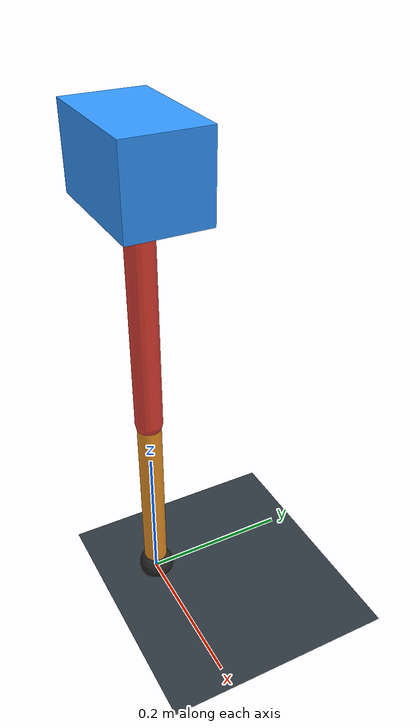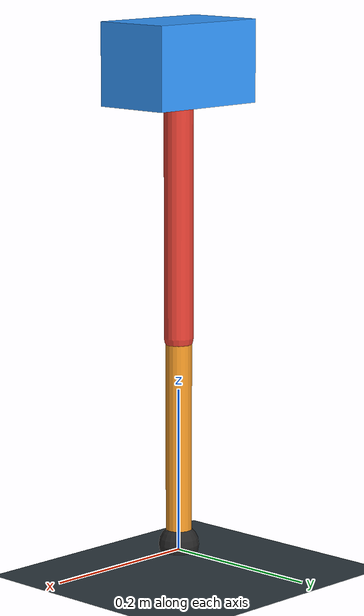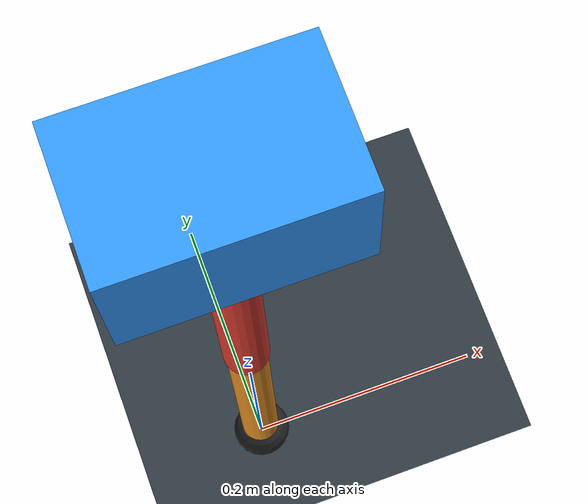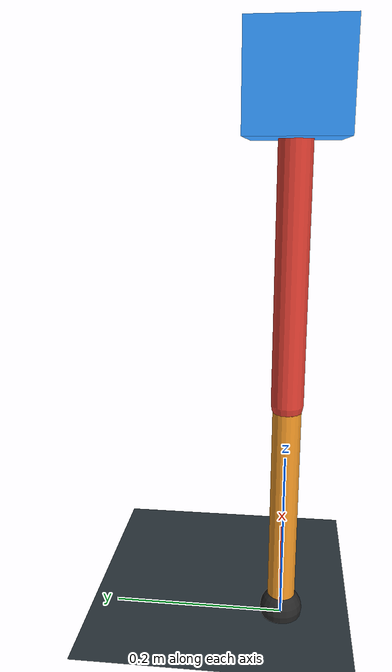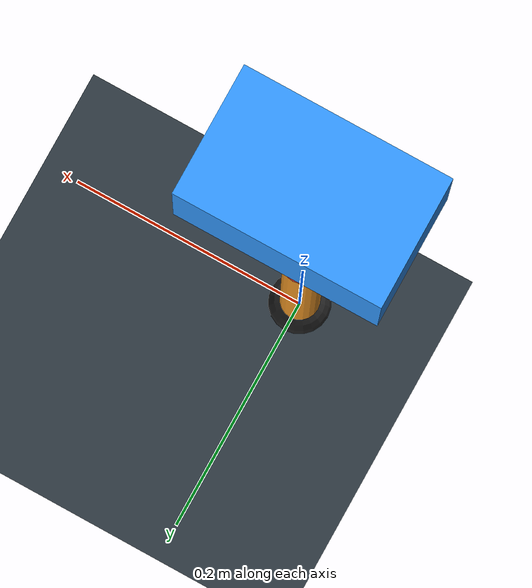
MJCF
<mujoco model="single_axis_two_bar">
  <compiler angle="radian" inertiafromgeom="true"/>
  <option timestep="0.001" integrator="implicitfast" gravity="0 0 -9.81"/>
  <default>
    <joint damping="0.08"/>
    <geom friction="1.2 0.01 0.0001" condim="3"/>
  </default>
  <worldbody>
    <geom name="floor" type="plane" size="5 5 0.1" rgba="0.18 0.22 0.25 1"/>
    <body name="carriage" pos="0 0 0.5976489976497871">
      <joint name="pole_slide" type="slide" axis="0 0 1"/>
      <geom name="payload" type="box" size="0.08 0.05 0.05" mass="2.356138989737328" rgba="0.2 0.6 1 1"/>
      <body name="thigh" pos="0 0 0">
        <joint name="hip" type="hinge" axis="0 1 0"/>
        <geom name="thigh_link" type="capsule" fromto="0 0 0 0 0 -0.3328734520818485" size="0.018" mass="0.2371767331429108" rgba="0.9 0.25 0.2 1"/>
        <body name="shank" pos="0 0 -0.3328734520818485">
          <joint name="knee" type="hinge" axis="0 1 0"/>
          <geom name="shank_link" type="capsule" fromto="0 0 0 0 0 -0.2574863393096846" size="0.016" mass="0.1834624191399377" rgba="0.95 0.6 0.15 1"/>
          <geom name="foot" type="sphere" pos="0 0 -0.2574863393096846" size="0.025" mass="0.03" rgba="0.15 0.15 0.15 1"/>
          <site name="toe" pos="0 0 -0.2574863393096846" size="0.008"/>
        </body>
      </body>
    </body>
  </worldbody>
  <actuator>
    <motor name="hip_motor" joint="hip" ctrlrange="-29.122495125499597 29.122495125499597"/>
    <motor name="knee_motor" joint="knee" ctrlrange="-104.04260634851859 104.04260634851859"/>
  </actuator>
</mujoco>
